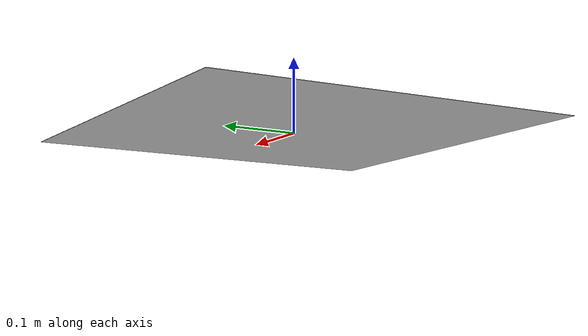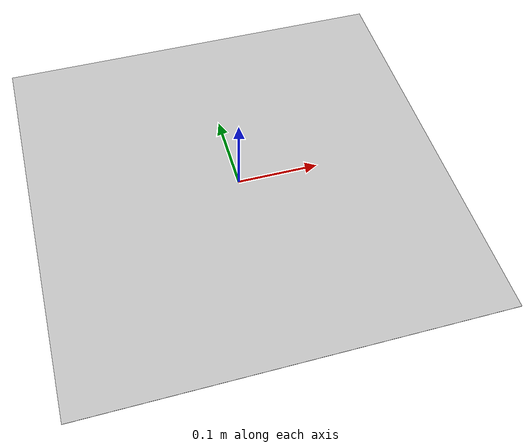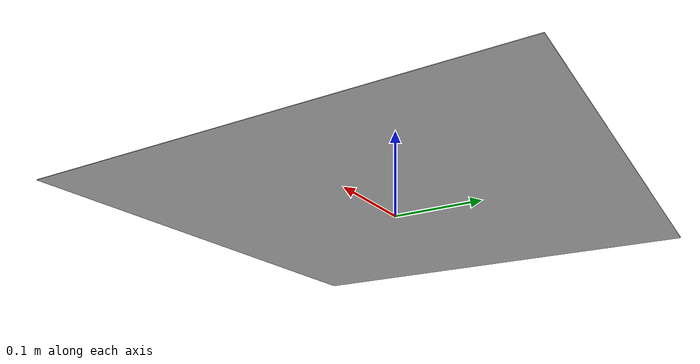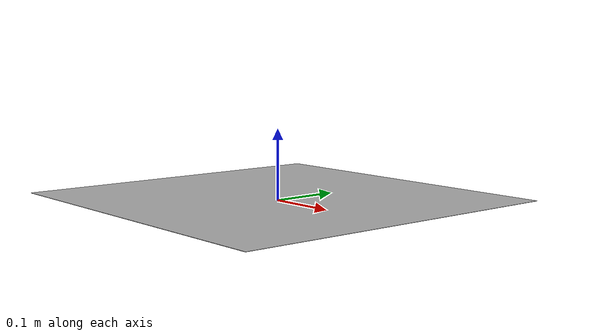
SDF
<?xml version="1.0"?>
<sdf version="1.6">
  <model name="aruco_floor_00">
    <static>true</static>
    <link name="link">
      <visual name="aruco_visual">
        <pose>0 0 0.005 0 0 0</pose>
        <geometry>
          <plane>
            <normal>0 0 1</normal>
            <size>0.5 0.5</size>
          </plane>
        </geometry>
        <material>
          <script>
            <uri>model://aruco_floor_00/materials/scripts</uri>
            <uri>model://aruco_floor_00/materials/textures</uri>
            <name>ArUco/Floor00</name>
          </script>
        </material>
      </visual>
    </link>
  </model>
</sdf>
